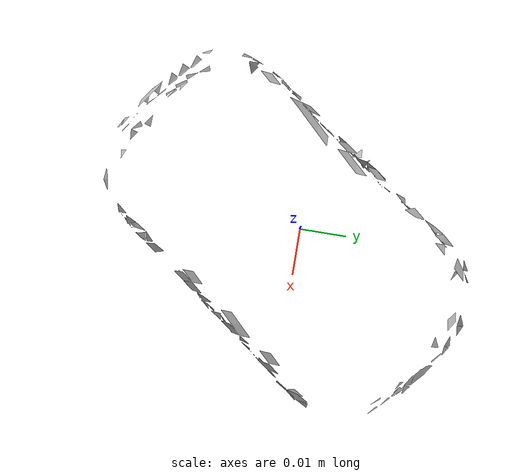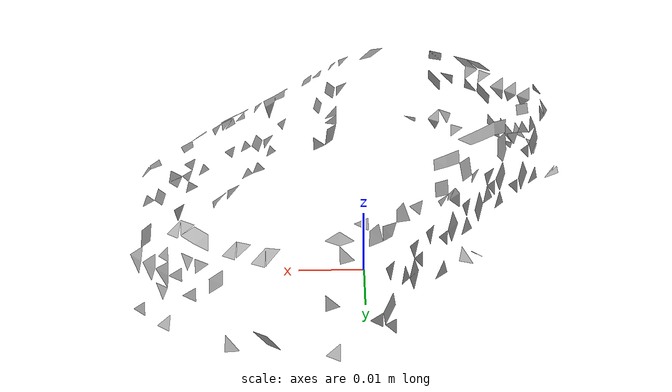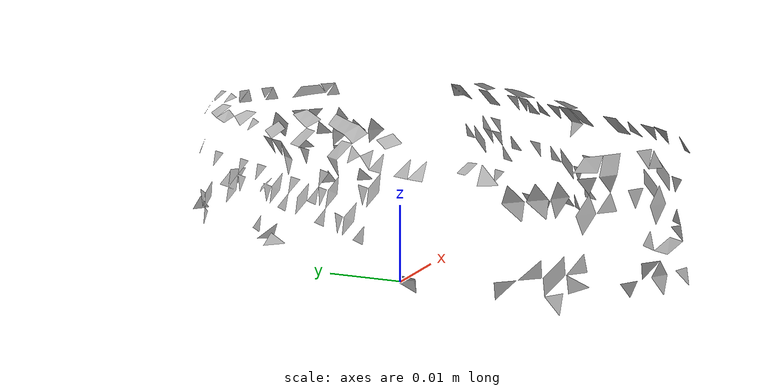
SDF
<?xml version='1.0'?>
<sdf version="1.4">
  <model name="h_lego_duplo">
    <static>false</static>
    <link name="link">
      <inertial>
        <pose>0.0026957183781390406 -0.0024514096389094964 0.01674408230806201 -1.6525207265593458 -1.5073385458454605 -0.5322831027398797</pose>
        <mass>4.349452729297724e-05</mass>
        <inertia>
          <ixx>2.2387182199947083e-08</ixx>
          <ixy>1.2407709188295415e-24</ixy>
          <ixz>2.248897290378544e-24</ixz>
          <iyy>1.597609916932358e-08</iyy>
          <iyz>2.911893860449733e-24</iyz>
          <izz>4.156761201826644e-09</izz>
        </inertia>
      </inertial>
      <collision name="collision">
        <geometry>
          <mesh>
            <!-- Use a downsampled mesh for collisions -->
            <uri>model://073-h_lego_duplo/tsdf/textured.obj</uri>
          </mesh>
        </geometry>
        <surface>
      </surface>
      </collision>
      <visual name="visual">
        <geometry>
          <mesh>
            <uri>model://073-h_lego_duplo/tsdf/textured.obj</uri>
          </mesh>
        </geometry>
        <material>
          <script>
            <uri>model://073-h_lego_duplo/h_lego_duplo.material</uri>
            <name>h_lego_duplo</name>
          </script>
        </material>
      </visual>
    </link>
    <plugin name="ROSTFPublisher" filename="ROSRobotPosePublisherPlugin.so">
    </plugin>
  </model>
</sdf>
